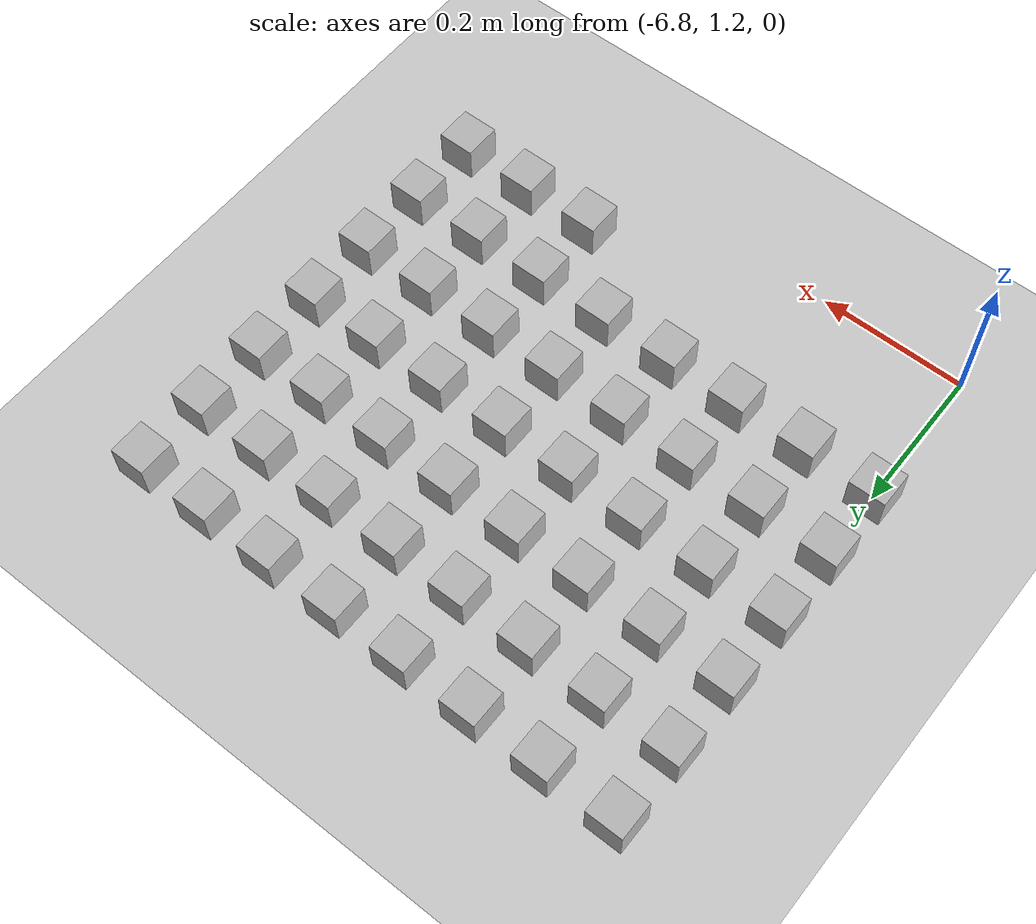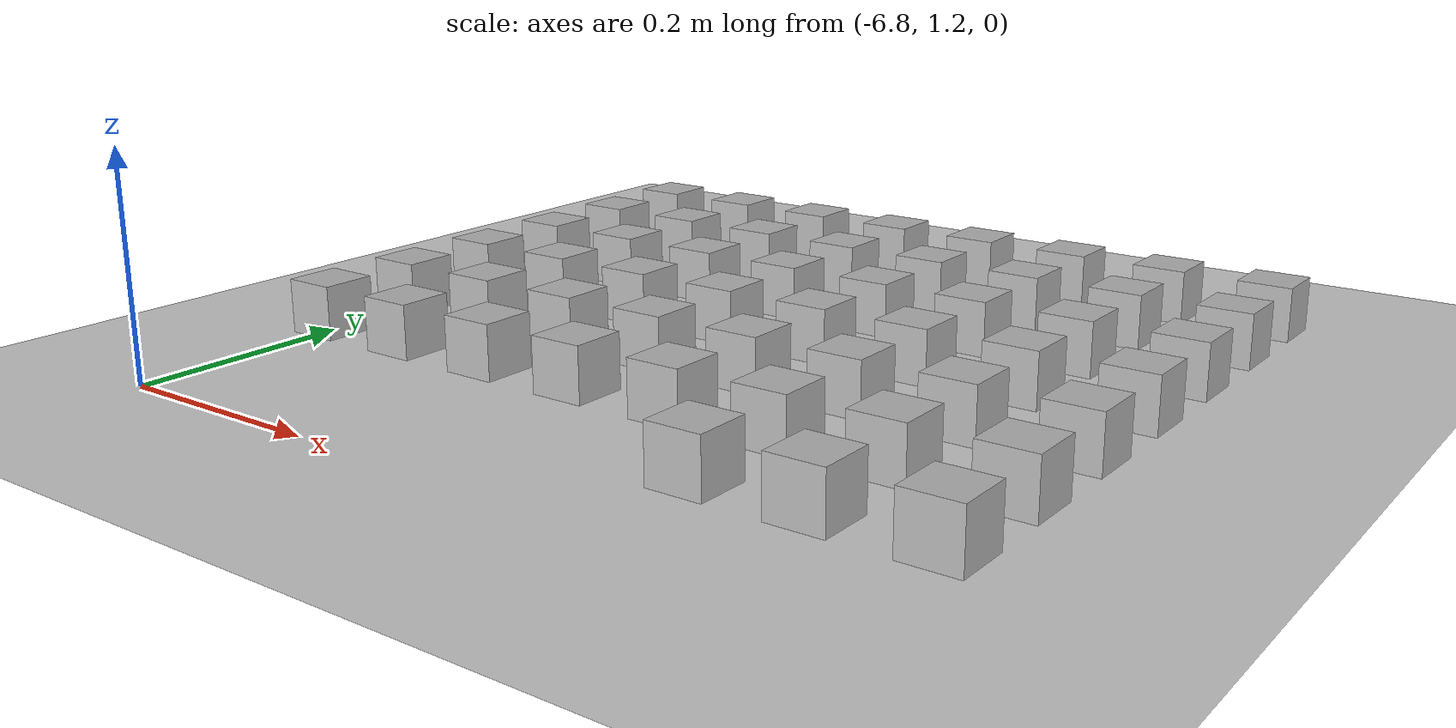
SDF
<sdf version="1.6">
 <world name="default">
  <model name="ground_plane">
   <static>1</static>
   <link name="link">
    <collision name="collision">
     <geometry><plane><normal>0 0 1</normal><size>100 100</size></plane></geometry>
     <surface><friction><ode><mu>100</mu><mu2>50</mu2></ode></friction></surface>
    </collision>
    <visual name="visual">
     <cast_shadows>0</cast_shadows>
     <geometry><plane><normal>0 0 1</normal><size>100 100</size></plane></geometry>
     <material>
      <script><uri>file://media/materials/scripts/gazebo.material</uri><name>Gazebo/Grey</name></script>
     </material>
    </visual>
   </link>
  </model>
  <model name="at77">
   <static>0</static>
   <link name="link">
    <inertial>
     <mass>0.01</mass>
     <inertia><ixx>4e-05</ixx><ixy>0</ixy><ixz>0</ixz><iyy>4e-05</iyy><iyz>0</iyz><izz>4e-05</izz></inertia>
    </inertial>
    <visual name="visual">
     <geometry><box><size>0.05 0.05 0.05</size></box></geometry>
     <material>
      <script>
       <uri>model://at0/materials/scripts</uri>
       <uri>model://at0/materials/textures</uri>
       <name>at0/Diffuse</name>
      </script>
     </material>
    </visual>
    <collision name="collision">
     <geometry><box><size>0.05 0.05 0.05</size></box></geometry>
     <surface><friction><ode><mu>0.8</mu><mu2>0.7</mu2></ode></friction></surface>
    </collision>
   </link>
   <pose>-6.3 1.3 0.025 0 -0 0</pose>
  </model>
  <model name="at78">
   <static>0</static>
   <link name="link">
    <inertial>
     <mass>0.01</mass>
     <inertia><ixx>4e-05</ixx><ixy>0</ixy><ixz>0</ixz><iyy>4e-05</iyy><iyz>0</iyz><izz>4e-05</izz></inertia>
    </inertial>
    <visual name="visual">
     <geometry><box><size>0.05 0.05 0.05</size></box></geometry>
     <material>
      <script>
       <uri>model://at0/materials/scripts</uri>
       <uri>model://at0/materials/textures</uri>
       <name>at0/Diffuse</name>
      </script>
     </material>
    </visual>
    <collision name="collision">
     <geometry><box><size>0.05 0.05 0.05</size></box></geometry>
     <surface><friction><ode><mu>0.8</mu><mu2>0.7</mu2></ode></friction></surface>
    </collision>
   </link>
   <pose>-6.2 1.3 0.025 0 -0 0</pose>
  </model>
  <model name="at79">
   <static>0</static>
   <link name="link">
    <inertial>
     <mass>0.01</mass>
     <inertia><ixx>4e-05</ixx><ixy>0</ixy><ixz>0</ixz><iyy>4e-05</iyy><iyz>0</iyz><izz>4e-05</izz></inertia>
    </inertial>
    <visual name="visual">
     <geometry><box><size>0.05 0.05 0.05</size></box></geometry>
     <material>
      <script>
       <uri>model://at0/materials/scripts</uri>
       <uri>model://at0/materials/textures</uri>
       <name>at0/Diffuse</name>
      </script>
     </material>
    </visual>
    <collision name="collision">
     <geometry><box><size>0.05 0.05 0.05</size></box></geometry>
     <surface><friction><ode><mu>0.8</mu><mu2>0.7</mu2></ode></friction></surface>
    </collision>
   </link>
   <pose>-6.1 1.3 0.025 0 -0 0</pose>
  </model>
  <model name="at80">
   <static>0</static>
   <link name="link">
    <inertial>
     <mass>0.01</mass>
     <inertia><ixx>4e-05</ixx><ixy>0</ixy><ixz>0</ixz><iyy>4e-05</iyy><iyz>0</iyz><izz>4e-05</izz></inertia>
    </inertial>
    <visual name="visual">
     <geometry><box><size>0.05 0.05 0.05</size></box></geometry>
     <material>
      <script>
       <uri>model://at0/materials/scripts</uri>
       <uri>model://at0/materials/textures</uri>
       <name>at0/Diffuse</name>
      </script>
     </material>
    </visual>
    <collision name="collision">
     <geometry><box><size>0.05 0.05 0.05</size></box></geometry>
     <surface><friction><ode><mu>0.8</mu><mu2>0.7</mu2></ode></friction></surface>
    </collision>
   </link>
   <pose>-6.8 1.4 0.025 0 -0 0</pose>
  </model>
  <model name="at81">
   <static>0</static>
   <link name="link">
    <inertial>
     <mass>0.01</mass>
     <inertia><ixx>4e-05</ixx><ixy>0</ixy><ixz>0</ixz><iyy>4e-05</iyy><iyz>0</iyz><izz>4e-05</izz></inertia>
    </inertial>
    <visual name="visual">
     <geometry><box><size>0.05 0.05 0.05</size></box></geometry>
     <material>
      <script>
       <uri>model://at0/materials/scripts</uri>
       <uri>model://at0/materials/textures</uri>
       <name>at0/Diffuse</name>
      </script>
     </material>
    </visual>
    <collision name="collision">
     <geometry><box><size>0.05 0.05 0.05</size></box></geometry>
     <surface><friction><ode><mu>0.8</mu><mu2>0.7</mu2></ode></friction></surface>
    </collision>
   </link>
   <pose>-6.7 1.4 0.025 0 -0 0</pose>
  </model>
  <model name="at82">
   <static>0</static>
   <link name="link">
    <inertial>
     <mass>0.01</mass>
     <inertia><ixx>4e-05</ixx><ixy>0</ixy><ixz>0</ixz><iyy>4e-05</iyy><iyz>0</iyz><izz>4e-05</izz></inertia>
    </inertial>
    <visual name="visual">
     <geometry><box><size>0.05 0.05 0.05</size></box></geometry>
     <material>
      <script>
       <uri>model://at0/materials/scripts</uri>
       <uri>model://at0/materials/textures</uri>
       <name>at0/Diffuse</name>
      </script>
     </material>
    </visual>
    <collision name="collision">
     <geometry><box><size>0.05 0.05 0.05</size></box></geometry>
     <surface><friction><ode><mu>0.8</mu><mu2>0.7</mu2></ode></friction></surface>
    </collision>
   </link>
   <pose>-6.6 1.4 0.025 0 -0 0</pose>
  </model>
  <model name="at83">
   <static>0</static>
   <link name="link">
    <inertial>
     <mass>0.01</mass>
     <inertia><ixx>4e-05</ixx><ixy>0</ixy><ixz>0</ixz><iyy>4e-05</iyy><iyz>0</iyz><izz>4e-05</izz></inertia>
    </inertial>
    <visual name="visual">
     <geometry><box><size>0.05 0.05 0.05</size></box></geometry>
     <material>
      <script>
       <uri>model://at0/materials/scripts</uri>
       <uri>model://at0/materials/textures</uri>
       <name>at0/Diffuse</name>
      </script>
     </material>
    </visual>
    <collision name="collision">
     <geometry><box><size>0.05 0.05 0.05</size></box></geometry>
     <surface><friction><ode><mu>0.8</mu><mu2>0.7</mu2></ode></friction></surface>
    </collision>
   </link>
   <pose>-6.5 1.4 0.025 0 -0 0</pose>
  </model>
  <model name="at84">
   <static>0</static>
   <link name="link">
    <inertial>
     <mass>0.01</mass>
     <inertia><ixx>4e-05</ixx><ixy>0</ixy><ixz>0</ixz><iyy>4e-05</iyy><iyz>0</iyz><izz>4e-05</izz></inertia>
    </inertial>
    <visual name="visual">
     <geometry><box><size>0.05 0.05 0.05</size></box></geometry>
     <material>
      <script>
       <uri>model://at0/materials/scripts</uri>
       <uri>model://at0/materials/textures</uri>
       <name>at0/Diffuse</name>
      </script>
     </material>
    </visual>
    <collision name="collision">
     <geometry><box><size>0.05 0.05 0.05</size></box></geometry>
     <surface><friction><ode><mu>0.8</mu><mu2>0.7</mu2></ode></friction></surface>
    </collision>
   </link>
   <pose>-6.4 1.4 0.025 0 -0 0</pose>
  </model>
  <model name="at85">
   <static>0</static>
   <link name="link">
    <inertial>
     <mass>0.01</mass>
     <inertia><ixx>4e-05</ixx><ixy>0</ixy><ixz>0</ixz><iyy>4e-05</iyy><iyz>0</iyz><izz>4e-05</izz></inertia>
    </inertial>
    <visual name="visual">
     <geometry><box><size>0.05 0.05 0.05</size></box></geometry>
     <material>
      <script>
       <uri>model://at0/materials/scripts</uri>
       <uri>model://at0/materials/textures</uri>
       <name>at0/Diffuse</name>
      </script>
     </material>
    </visual>
    <collision name="collision">
     <geometry><box><size>0.05 0.05 0.05</size></box></geometry>
     <surface><friction><ode><mu>0.8</mu><mu2>0.7</mu2></ode></friction></surface>
    </collision>
   </link>
   <pose>-6.3 1.4 0.025 0 -0 0</pose>
  </model>
  <model name="at86">
   <static>0</static>
   <link name="link">
    <inertial>
     <mass>0.01</mass>
     <inertia><ixx>4e-05</ixx><ixy>0</ixy><ixz>0</ixz><iyy>4e-05</iyy><iyz>0</iyz><izz>4e-05</izz></inertia>
    </inertial>
    <visual name="visual">
     <geometry><box><size>0.05 0.05 0.05</size></box></geometry>
     <material>
      <script>
       <uri>model://at0/materials/scripts</uri>
       <uri>model://at0/materials/textures</uri>
       <name>at0/Diffuse</name>
      </script>
     </material>
    </visual>
    <collision name="collision">
     <geometry><box><size>0.05 0.05 0.05</size></box></geometry>
     <surface><friction><ode><mu>0.8</mu><mu2>0.7</mu2></ode></friction></surface>
    </collision>
   </link>
   <pose>-6.2 1.4 0.025 0 -0 0</pose>
  </model>
  <model name="at87">
   <static>0</static>
   <link name="link">
    <inertial>
     <mass>0.01</mass>
     <inertia><ixx>4e-05</ixx><ixy>0</ixy><ixz>0</ixz><iyy>4e-05</iyy><iyz>0</iyz><izz>4e-05</izz></inertia>
    </inertial>
    <visual name="visual">
     <geometry><box><size>0.05 0.05 0.05</size></box></geometry>
     <material>
      <script>
       <uri>model://at0/materials/scripts</uri>
       <uri>model://at0/materials/textures</uri>
       <name>at0/Diffuse</name>
      </script>
     </material>
    </visual>
    <collision name="collision">
     <geometry><box><size>0.05 0.05 0.05</size></box></geometry>
     <surface><friction><ode><mu>0.8</mu><mu2>0.7</mu2></ode></friction></surface>
    </collision>
   </link>
   <pose>-6.1 1.4 0.025 0 -0 0</pose>
  </model>
  <model name="at88">
   <static>0</static>
   <link name="link">
    <inertial>
     <mass>0.01</mass>
     <inertia><ixx>4e-05</ixx><ixy>0</ixy><ixz>0</ixz><iyy>4e-05</iyy><iyz>0</iyz><izz>4e-05</izz></inertia>
    </inertial>
    <visual name="visual">
     <geometry><box><size>0.05 0.05 0.05</size></box></geometry>
     <material>
      <script>
       <uri>model://at0/materials/scripts</uri>
       <uri>model://at0/materials/textures</uri>
       <name>at0/Diffuse</name>
      </script>
     </material>
    </visual>
    <collision name="collision">
     <geometry><box><size>0.05 0.05 0.05</size></box></geometry>
     <surface><friction><ode><mu>0.8</mu><mu2>0.7</mu2></ode></friction></surface>
    </collision>
   </link>
   <pose>-6.8 1.5 0.025 0 -0 0</pose>
  </model>
  <model name="at89">
   <static>0</static>
   <link name="link">
    <inertial>
     <mass>0.01</mass>
     <inertia><ixx>4e-05</ixx><ixy>0</ixy><ixz>0</ixz><iyy>4e-05</iyy><iyz>0</iyz><izz>4e-05</izz></inertia>
    </inertial>
    <visual name="visual">
     <geometry><box><size>0.05 0.05 0.05</size></box></geometry>
     <material>
      <script>
       <uri>model://at0/materials/scripts</uri>
       <uri>model://at0/materials/textures</uri>
       <name>at0/Diffuse</name>
      </script>
     </material>
    </visual>
    <collision name="collision">
     <geometry><box><size>0.05 0.05 0.05</size></box></geometry>
     <surface><friction><ode><mu>0.8</mu><mu2>0.7</mu2></ode></friction></surface>
    </collision>
   </link>
   <pose>-6.7 1.5 0.025 0 -0 0</pose>
  </model>
  <model name="at90">
   <static>0</static>
   <link name="link">
    <inertial>
     <mass>0.01</mass>
     <inertia><ixx>4e-05</ixx><ixy>0</ixy><ixz>0</ixz><iyy>4e-05</iyy><iyz>0</iyz><izz>4e-05</izz></inertia>
    </inertial>
    <visual name="visual">
     <geometry><box><size>0.05 0.05 0.05</size></box></geometry>
     <material>
      <script>
       <uri>model://at0/materials/scripts</uri>
       <uri>model://at0/materials/textures</uri>
       <name>at0/Diffuse</name>
      </script>
     </material>
    </visual>
    <collision name="collision">
     <geometry><box><size>0.05 0.05 0.05</size></box></geometry>
     <surface><friction><ode><mu>0.8</mu><mu2>0.7</mu2></ode></friction></surface>
    </collision>
   </link>
   <pose>-6.6 1.5 0.025 0 -0 0</pose>
  </model>
  <model name="at91">
   <static>0</static>
   <link name="link">
    <inertial>
     <mass>0.01</mass>
     <inertia><ixx>4e-05</ixx><ixy>0</ixy><ixz>0</ixz><iyy>4e-05</iyy><iyz>0</iyz><izz>4e-05</izz></inertia>
    </inertial>
    <visual name="visual">
     <geometry><box><size>0.05 0.05 0.05</size></box></geometry>
     <material>
      <script>
       <uri>model://at0/materials/scripts</uri>
       <uri>model://at0/materials/textures</uri>
       <name>at0/Diffuse</name>
      </script>
     </material>
    </visual>
    <collision name="collision">
     <geometry><box><size>0.05 0.05 0.05</size></box></geometry>
     <surface><friction><ode><mu>0.8</mu><mu2>0.7</mu2></ode></friction></surface>
    </collision>
   </link>
   <pose>-6.5 1.5 0.025 0 -0 0</pose>
  </model>
  <model name="at92">
   <static>0</static>
   <link name="link">
    <inertial>
     <mass>0.01</mass>
     <inertia><ixx>4e-05</ixx><ixy>0</ixy><ixz>0</ixz><iyy>4e-05</iyy><iyz>0</iyz><izz>4e-05</izz></inertia>
    </inertial>
    <visual name="visual">
     <geometry><box><size>0.05 0.05 0.05</size></box></geometry>
     <material>
      <script>
       <uri>model://at0/materials/scripts</uri>
       <uri>model://at0/materials/textures</uri>
       <name>at0/Diffuse</name>
      </script>
     </material>
    </visual>
    <collision name="collision">
     <geometry><box><size>0.05 0.05 0.05</size></box></geometry>
     <surface><friction><ode><mu>0.8</mu><mu2>0.7</mu2></ode></friction></surface>
    </collision>
   </link>
   <pose>-6.4 1.5 0.025 0 -0 0</pose>
  </model>
  <model name="at93">
   <static>0</static>
   <link name="link">
    <inertial>
     <mass>0.01</mass>
     <inertia><ixx>4e-05</ixx><ixy>0</ixy><ixz>0</ixz><iyy>4e-05</iyy><iyz>0</iyz><izz>4e-05</izz></inertia>
    </inertial>
    <visual name="visual">
     <geometry><box><size>0.05 0.05 0.05</size></box></geometry>
     <material>
      <script>
       <uri>model://at0/materials/scripts</uri>
       <uri>model://at0/materials/textures</uri>
       <name>at0/Diffuse</name>
      </script>
     </material>
    </visual>
    <collision name="collision">
     <geometry><box><size>0.05 0.05 0.05</size></box></geometry>
     <surface><friction><ode><mu>0.8</mu><mu2>0.7</mu2></ode></friction></surface>
    </collision>
   </link>
   <pose>-6.3 1.5 0.025 0 -0 0</pose>
  </model>
  <model name="at94">
   <static>0</static>
   <link name="link">
    <inertial>
     <mass>0.01</mass>
     <inertia><ixx>4e-05</ixx><ixy>0</ixy><ixz>0</ixz><iyy>4e-05</iyy><iyz>0</iyz><izz>4e-05</izz></inertia>
    </inertial>
    <visual name="visual">
     <geometry><box><size>0.05 0.05 0.05</size></box></geometry>
     <material>
      <script>
       <uri>model://at0/materials/scripts</uri>
       <uri>model://at0/materials/textures</uri>
       <name>at0/Diffuse</name>
      </script>
     </material>
    </visual>
    <collision name="collision">
     <geometry><box><size>0.05 0.05 0.05</size></box></geometry>
     <surface><friction><ode><mu>0.8</mu><mu2>0.7</mu2></ode></friction></surface>
    </collision>
   </link>
   <pose>-6.2 1.5 0.025 0 -0 0</pose>
  </model>
  <model name="at95">
   <static>0</static>
   <link name="link">
    <inertial>
     <mass>0.01</mass>
     <inertia><ixx>4e-05</ixx><ixy>0</ixy><ixz>0</ixz><iyy>4e-05</iyy><iyz>0</iyz><izz>4e-05</izz></inertia>
    </inertial>
    <visual name="visual">
     <geometry><box><size>0.05 0.05 0.05</size></box></geometry>
     <material>
      <script>
       <uri>model://at0/materials/scripts</uri>
       <uri>model://at0/materials/textures</uri>
       <name>at0/Diffuse</name>
      </script>
     </material>
    </visual>
    <collision name="collision">
     <geometry><box><size>0.05 0.05 0.05</size></box></geometry>
     <surface><friction><ode><mu>0.8</mu><mu2>0.7</mu2></ode></friction></surface>
    </collision>
   </link>
   <pose>-6.1 1.5 0.025 0 -0 0</pose>
  </model>
  <model name="at96">
   <static>0</static>
   <link name="link">
    <inertial>
     <mass>0.01</mass>
     <inertia><ixx>4e-05</ixx><ixy>0</ixy><ixz>0</ixz><iyy>4e-05</iyy><iyz>0</iyz><izz>4e-05</izz></inertia>
    </inertial>
    <visual name="visual">
     <geometry><box><size>0.05 0.05 0.05</size></box></geometry>
     <material>
      <script>
       <uri>model://at0/materials/scripts</uri>
       <uri>model://at0/materials/textures</uri>
       <name>at0/Diffuse</name>
      </script>
     </material>
    </visual>
    <collision name="collision">
     <geometry><box><size>0.05 0.05 0.05</size></box></geometry>
     <surface><friction><ode><mu>0.8</mu><mu2>0.7</mu2></ode></friction></surface>
    </collision>
   </link>
   <pose>-6.8 1.6 0.025 0 -0 0</pose>
  </model>
  <model name="at97">
   <static>0</static>
   <link name="link">
    <inertial>
     <mass>0.01</mass>
     <inertia><ixx>4e-05</ixx><ixy>0</ixy><ixz>0</ixz><iyy>4e-05</iyy><iyz>0</iyz><izz>4e-05</izz></inertia>
    </inertial>
    <visual name="visual">
     <geometry><box><size>0.05 0.05 0.05</size></box></geometry>
     <material>
      <script>
       <uri>model://at0/materials/scripts</uri>
       <uri>model://at0/materials/textures</uri>
       <name>at0/Diffuse</name>
      </script>
     </material>
    </visual>
    <collision name="collision">
     <geometry><box><size>0.05 0.05 0.05</size></box></geometry>
     <surface><friction><ode><mu>0.8</mu><mu2>0.7</mu2></ode></friction></surface>
    </collision>
   </link>
   <pose>-6.7 1.6 0.025 0 -0 0</pose>
  </model>
  <model name="at98">
   <static>0</static>
   <link name="link">
    <inertial>
     <mass>0.01</mass>
     <inertia><ixx>4e-05</ixx><ixy>0</ixy><ixz>0</ixz><iyy>4e-05</iyy><iyz>0</iyz><izz>4e-05</izz></inertia>
    </inertial>
    <visual name="visual">
     <geometry><box><size>0.05 0.05 0.05</size></box></geometry>
     <material>
      <script>
       <uri>model://at0/materials/scripts</uri>
       <uri>model://at0/materials/textures</uri>
       <name>at0/Diffuse</name>
      </script>
     </material>
    </visual>
    <collision name="collision">
     <geometry><box><size>0.05 0.05 0.05</size></box></geometry>
     <surface><friction><ode><mu>0.8</mu><mu2>0.7</mu2></ode></friction></surface>
    </collision>
   </link>
   <pose>-6.6 1.6 0.025 0 -0 0</pose>
  </model>
  <model name="at99">
   <static>0</static>
   <link name="link">
    <inertial>
     <mass>0.01</mass>
     <inertia><ixx>4e-05</ixx><ixy>0</ixy><ixz>0</ixz><iyy>4e-05</iyy><iyz>0</iyz><izz>4e-05</izz></inertia>
    </inertial>
    <visual name="visual">
     <geometry><box><size>0.05 0.05 0.05</size></box></geometry>
     <material>
      <script>
       <uri>model://at0/materials/scripts</uri>
       <uri>model://at0/materials/textures</uri>
       <name>at0/Diffuse</name>
      </script>
     </material>
    </visual>
    <collision name="collision">
     <geometry><box><size>0.05 0.05 0.05</size></box></geometry>
     <surface><friction><ode><mu>0.8</mu><mu2>0.7</mu2></ode></friction></surface>
    </collision>
   </link>
   <pose>-6.5 1.6 0.025 0 -0 0</pose>
  </model>
  <model name="at100">
   <static>0</static>
   <link name="link">
    <inertial>
     <mass>0.01</mass>
     <inertia><ixx>4e-05</ixx><ixy>0</ixy><ixz>0</ixz><iyy>4e-05</iyy><iyz>0</iyz><izz>4e-05</izz></inertia>
    </inertial>
    <visual name="visual">
     <geometry><box><size>0.05 0.05 0.05</size></box></geometry>
     <material>
      <script>
       <uri>model://at0/materials/scripts</uri>
       <uri>model://at0/materials/textures</uri>
       <name>at0/Diffuse</name>
      </script>
     </material>
    </visual>
    <collision name="collision">
     <geometry><box><size>0.05 0.05 0.05</size></box></geometry>
     <surface><friction><ode><mu>0.8</mu><mu2>0.7</mu2></ode></friction></surface>
    </collision>
   </link>
   <pose>-6.4 1.6 0.025 0 -0 0</pose>
  </model>
  <model name="at101">
   <static>0</static>
   <link name="link">
    <inertial>
     <mass>0.01</mass>
     <inertia><ixx>4e-05</ixx><ixy>0</ixy><ixz>0</ixz><iyy>4e-05</iyy><iyz>0</iyz><izz>4e-05</izz></inertia>
    </inertial>
    <visual name="visual">
     <geometry><box><size>0.05 0.05 0.05</size></box></geometry>
     <material>
      <script>
       <uri>model://at0/materials/scripts</uri>
       <uri>model://at0/materials/textures</uri>
       <name>at0/Diffuse</name>
      </script>
     </material>
    </visual>
    <collision name="collision">
     <geometry><box><size>0.05 0.05 0.05</size></box></geometry>
     <surface><friction><ode><mu>0.8</mu><mu2>0.7</mu2></ode></friction></surface>
    </collision>
   </link>
   <pose>-6.3 1.6 0.025 0 -0 0</pose>
  </model>
  <model name="at102">
   <static>0</static>
   <link name="link">
    <inertial>
     <mass>0.01</mass>
     <inertia><ixx>4e-05</ixx><ixy>0</ixy><ixz>0</ixz><iyy>4e-05</iyy><iyz>0</iyz><izz>4e-05</izz></inertia>
    </inertial>
    <visual name="visual">
     <geometry><box><size>0.05 0.05 0.05</size></box></geometry>
     <material>
      <script>
       <uri>model://at0/materials/scripts</uri>
       <uri>model://at0/materials/textures</uri>
       <name>at0/Diffuse</name>
      </script>
     </material>
    </visual>
    <collision name="collision">
     <geometry><box><size>0.05 0.05 0.05</size></box></geometry>
     <surface><friction><ode><mu>0.8</mu><mu2>0.7</mu2></ode></friction></surface>
    </collision>
   </link>
   <pose>-6.2 1.6 0.025 0 -0 0</pose>
  </model>
  <model name="at103">
   <static>0</static>
   <link name="link">
    <inertial>
     <mass>0.01</mass>
     <inertia><ixx>4e-05</ixx><ixy>0</ixy><ixz>0</ixz><iyy>4e-05</iyy><iyz>0</iyz><izz>4e-05</izz></inertia>
    </inertial>
    <visual name="visual">
     <geometry><box><size>0.05 0.05 0.05</size></box></geometry>
     <material>
      <script>
       <uri>model://at0/materials/scripts</uri>
       <uri>model://at0/materials/textures</uri>
       <name>at0/Diffuse</name>
      </script>
     </material>
    </visual>
    <collision name="collision">
     <geometry><box><size>0.05 0.05 0.05</size></box></geometry>
     <surface><friction><ode><mu>0.8</mu><mu2>0.7</mu2></ode></friction></surface>
    </collision>
   </link>
   <pose>-6.1 1.6 0.025 0 -0 0</pose>
  </model>
  <model name="at104">
   <static>0</static>
   <link name="link">
    <inertial>
     <mass>0.01</mass>
     <inertia><ixx>4e-05</ixx><ixy>0</ixy><ixz>0</ixz><iyy>4e-05</iyy><iyz>0</iyz><izz>4e-05</izz></inertia>
    </inertial>
    <visual name="visual">
     <geometry><box><size>0.05 0.05 0.05</size></box></geometry>
     <material>
      <script>
       <uri>model://at0/materials/scripts</uri>
       <uri>model://at0/materials/textures</uri>
       <name>at0/Diffuse</name>
      </script>
     </material>
    </visual>
    <collision name="collision">
     <geometry><box><size>0.05 0.05 0.05</size></box></geometry>
     <surface><friction><ode><mu>0.8</mu><mu2>0.7</mu2></ode></friction></surface>
    </collision>
   </link>
   <pose>-6.8 1.7 0.025 0 -0 0</pose>
  </model>
  <model name="at105">
   <static>0</static>
   <link name="link">
    <inertial>
     <mass>0.01</mass>
     <inertia><ixx>4e-05</ixx><ixy>0</ixy><ixz>0</ixz><iyy>4e-05</iyy><iyz>0</iyz><izz>4e-05</izz></inertia>
    </inertial>
    <visual name="visual">
     <geometry><box><size>0.05 0.05 0.05</size></box></geometry>
     <material>
      <script>
       <uri>model://at0/materials/scripts</uri>
       <uri>model://at0/materials/textures</uri>
       <name>at0/Diffuse</name>
      </script>
     </material>
    </visual>
    <collision name="collision">
     <geometry><box><size>0.05 0.05 0.05</size></box></geometry>
     <surface><friction><ode><mu>0.8</mu><mu2>0.7</mu2></ode></friction></surface>
    </collision>
   </link>
   <pose>-6.7 1.7 0.025 0 -0 0</pose>
  </model>
  <model name="at106">
   <static>0</static>
   <link name="link">
    <inertial>
     <mass>0.01</mass>
     <inertia><ixx>4e-05</ixx><ixy>0</ixy><ixz>0</ixz><iyy>4e-05</iyy><iyz>0</iyz><izz>4e-05</izz></inertia>
    </inertial>
    <visual name="visual">
     <geometry><box><size>0.05 0.05 0.05</size></box></geometry>
     <material>
      <script>
       <uri>model://at0/materials/scripts</uri>
       <uri>model://at0/materials/textures</uri>
       <name>at0/Diffuse</name>
      </script>
     </material>
    </visual>
    <collision name="collision">
     <geometry><box><size>0.05 0.05 0.05</size></box></geometry>
     <surface><friction><ode><mu>0.8</mu><mu2>0.7</mu2></ode></friction></surface>
    </collision>
   </link>
   <pose>-6.6 1.7 0.025 0 -0 0</pose>
  </model>
  <model name="at107">
   <static>0</static>
   <link name="link">
    <inertial>
     <mass>0.01</mass>
     <inertia><ixx>4e-05</ixx><ixy>0</ixy><ixz>0</ixz><iyy>4e-05</iyy><iyz>0</iyz><izz>4e-05</izz></inertia>
    </inertial>
    <visual name="visual">
     <geometry><box><size>0.05 0.05 0.05</size></box></geometry>
     <material>
      <script>
       <uri>model://at0/materials/scripts</uri>
       <uri>model://at0/materials/textures</uri>
       <name>at0/Diffuse</name>
      </script>
     </material>
    </visual>
    <collision name="collision">
     <geometry><box><size>0.05 0.05 0.05</size></box></geometry>
     <surface><friction><ode><mu>0.8</mu><mu2>0.7</mu2></ode></friction></surface>
    </collision>
   </link>
   <pose>-6.5 1.7 0.025 0 -0 0</pose>
  </model>
  <model name="at108">
   <static>0</static>
   <link name="link">
    <inertial>
     <mass>0.01</mass>
     <inertia><ixx>4e-05</ixx><ixy>0</ixy><ixz>0</ixz><iyy>4e-05</iyy><iyz>0</iyz><izz>4e-05</izz></inertia>
    </inertial>
    <visual name="visual">
     <geometry><box><size>0.05 0.05 0.05</size></box></geometry>
     <material>
      <script>
       <uri>model://at0/materials/scripts</uri>
       <uri>model://at0/materials/textures</uri>
       <name>at0/Diffuse</name>
      </script>
     </material>
    </visual>
    <collision name="collision">
     <geometry><box><size>0.05 0.05 0.05</size></box></geometry>
     <surface><friction><ode><mu>0.8</mu><mu2>0.7</mu2></ode></friction></surface>
    </collision>
   </link>
   <pose>-6.4 1.7 0.025 0 -0 0</pose>
  </model>
  <model name="at109">
   <static>0</static>
   <link name="link">
    <inertial>
     <mass>0.01</mass>
     <inertia><ixx>4e-05</ixx><ixy>0</ixy><ixz>0</ixz><iyy>4e-05</iyy><iyz>0</iyz><izz>4e-05</izz></inertia>
    </inertial>
    <visual name="visual">
     <geometry><box><size>0.05 0.05 0.05</size></box></geometry>
     <material>
      <script>
       <uri>model://at0/materials/scripts</uri>
       <uri>model://at0/materials/textures</uri>
       <name>at0/Diffuse</name>
      </script>
     </material>
    </visual>
    <collision name="collision">
     <geometry><box><size>0.05 0.05 0.05</size></box></geometry>
     <surface><friction><ode><mu>0.8</mu><mu2>0.7</mu2></ode></friction></surface>
    </collision>
   </link>
   <pose>-6.3 1.7 0.025 0 -0 0</pose>
  </model>
  <model name="at110">
   <static>0</static>
   <link name="link">
    <inertial>
     <mass>0.01</mass>
     <inertia><ixx>4e-05</ixx><ixy>0</ixy><ixz>0</ixz><iyy>4e-05</iyy><iyz>0</iyz><izz>4e-05</izz></inertia>
    </inertial>
    <visual name="visual">
     <geometry><box><size>0.05 0.05 0.05</size></box></geometry>
     <material>
      <script>
       <uri>model://at0/materials/scripts</uri>
       <uri>model://at0/materials/textures</uri>
       <name>at0/Diffuse</name>
      </script>
     </material>
    </visual>
    <collision name="collision">
     <geometry><box><size>0.05 0.05 0.05</size></box></geometry>
     <surface><friction><ode><mu>0.8</mu><mu2>0.7</mu2></ode></friction></surface>
    </collision>
   </link>
   <pose>-6.2 1.7 0.025 0 -0 0</pose>
  </model>
  <model name="at111">
   <static>0</static>
   <link name="link">
    <inertial>
     <mass>0.01</mass>
     <inertia><ixx>4e-05</ixx><ixy>0</ixy><ixz>0</ixz><iyy>4e-05</iyy><iyz>0</iyz><izz>4e-05</izz></inertia>
    </inertial>
    <visual name="visual">
     <geometry><box><size>0.05 0.05 0.05</size></box></geometry>
     <material>
      <script>
       <uri>model://at0/materials/scripts</uri>
       <uri>model://at0/materials/textures</uri>
       <name>at0/Diffuse</name>
      </script>
     </material>
    </visual>
    <collision name="collision">
     <geometry><box><size>0.05 0.05 0.05</size></box></geometry>
     <surface><friction><ode><mu>0.8</mu><mu2>0.7</mu2></ode></friction></surface>
    </collision>
   </link>
   <pose>-6.1 1.7 0.025 0 -0 0</pose>
  </model>
  <model name="at112">
   <static>0</static>
   <link name="link">
    <inertial>
     <mass>0.01</mass>
     <inertia><ixx>4e-05</ixx><ixy>0</ixy><ixz>0</ixz><iyy>4e-05</iyy><iyz>0</iyz><izz>4e-05</izz></inertia>
    </inertial>
    <visual name="visual">
     <geometry><box><size>0.05 0.05 0.05</size></box></geometry>
     <material>
      <script>
       <uri>model://at0/materials/scripts</uri>
       <uri>model://at0/materials/textures</uri>
       <name>at0/Diffuse</name>
      </script>
     </material>
    </visual>
    <collision name="collision">
     <geometry><box><size>0.05 0.05 0.05</size></box></geometry>
     <surface><friction><ode><mu>0.8</mu><mu2>0.7</mu2></ode></friction></surface>
    </collision>
   </link>
   <pose>-6.8 1.8 0.025 0 -0 0</pose>
  </model>
  <model name="at113">
   <static>0</static>
   <link name="link">
    <inertial>
     <mass>0.01</mass>
     <inertia><ixx>4e-05</ixx><ixy>0</ixy><ixz>0</ixz><iyy>4e-05</iyy><iyz>0</iyz><izz>4e-05</izz></inertia>
    </inertial>
    <visual name="visual">
     <geometry><box><size>0.05 0.05 0.05</size></box></geometry>
     <material>
      <script>
       <uri>model://at0/materials/scripts</uri>
       <uri>model://at0/materials/textures</uri>
       <name>at0/Diffuse</name>
      </script>
     </material>
    </visual>
    <collision name="collision">
     <geometry><box><size>0.05 0.05 0.05</size></box></geometry>
     <surface><friction><ode><mu>0.8</mu><mu2>0.7</mu2></ode></friction></surface>
    </collision>
   </link>
   <pose>-6.7 1.8 0.025 0 -0 0</pose>
  </model>
  <model name="at114">
   <static>0</static>
   <link name="link">
    <inertial>
     <mass>0.01</mass>
     <inertia><ixx>4e-05</ixx><ixy>0</ixy><ixz>0</ixz><iyy>4e-05</iyy><iyz>0</iyz><izz>4e-05</izz></inertia>
    </inertial>
    <visual name="visual">
     <geometry><box><size>0.05 0.05 0.05</size></box></geometry>
     <material>
      <script>
       <uri>model://at0/materials/scripts</uri>
       <uri>model://at0/materials/textures</uri>
       <name>at0/Diffuse</name>
      </script>
     </material>
    </visual>
    <collision name="collision">
     <geometry><box><size>0.05 0.05 0.05</size></box></geometry>
     <surface><friction><ode><mu>0.8</mu><mu2>0.7</mu2></ode></friction></surface>
    </collision>
   </link>
   <pose>-6.6 1.8 0.025 0 -0 0</pose>
  </model>
  <model name="at115">
   <static>0</static>
   <link name="link">
    <inertial>
     <mass>0.01</mass>
     <inertia><ixx>4e-05</ixx><ixy>0</ixy><ixz>0</ixz><iyy>4e-05</iyy><iyz>0</iyz><izz>4e-05</izz></inertia>
    </inertial>
    <visual name="visual">
     <geometry><box><size>0.05 0.05 0.05</size></box></geometry>
     <material>
      <script>
       <uri>model://at0/materials/scripts</uri>
       <uri>model://at0/materials/textures</uri>
       <name>at0/Diffuse</name>
      </script>
     </material>
    </visual>
    <collision name="collision">
     <geometry><box><size>0.05 0.05 0.05</size></box></geometry>
     <surface><friction><ode><mu>0.8</mu><mu2>0.7</mu2></ode></friction></surface>
    </collision>
   </link>
   <pose>-6.5 1.8 0.025 0 -0 0</pose>
  </model>
  <model name="at116">
   <static>0</static>
   <link name="link">
    <inertial>
     <mass>0.01</mass>
     <inertia><ixx>4e-05</ixx><ixy>0</ixy><ixz>0</ixz><iyy>4e-05</iyy><iyz>0</iyz><izz>4e-05</izz></inertia>
    </inertial>
    <visual name="visual">
     <geometry><box><size>0.05 0.05 0.05</size></box></geometry>
     <material>
      <script>
       <uri>model://at0/materials/scripts</uri>
       <uri>model://at0/materials/textures</uri>
       <name>at0/Diffuse</name>
      </script>
     </material>
    </visual>
    <collision name="collision">
     <geometry><box><size>0.05 0.05 0.05</size></box></geometry>
     <surface><friction><ode><mu>0.8</mu><mu2>0.7</mu2></ode></friction></surface>
    </collision>
   </link>
   <pose>-6.4 1.8 0.025 0 -0 0</pose>
  </model>
  <model name="at117">
   <static>0</static>
   <link name="link">
    <inertial>
     <mass>0.01</mass>
     <inertia><ixx>4e-05</ixx><ixy>0</ixy><ixz>0</ixz><iyy>4e-05</iyy><iyz>0</iyz><izz>4e-05</izz></inertia>
    </inertial>
    <visual name="visual">
     <geometry><box><size>0.05 0.05 0.05</size></box></geometry>
     <material>
      <script>
       <uri>model://at0/materials/scripts</uri>
       <uri>model://at0/materials/textures</uri>
       <name>at0/Diffuse</name>
      </script>
     </material>
    </visual>
    <collision name="collision">
     <geometry><box><size>0.05 0.05 0.05</size></box></geometry>
     <surface><friction><ode><mu>0.8</mu><mu2>0.7</mu2></ode></friction></surface>
    </collision>
   </link>
   <pose>-6.3 1.8 0.025 0 -0 0</pose>
  </model>
  <model name="at118">
   <static>0</static>
   <link name="link">
    <inertial>
     <mass>0.01</mass>
     <inertia><ixx>4e-05</ixx><ixy>0</ixy><ixz>0</ixz><iyy>4e-05</iyy><iyz>0</iyz><izz>4e-05</izz></inertia>
    </inertial>
    <visual name="visual">
     <geometry><box><size>0.05 0.05 0.05</size></box></geometry>
     <material>
      <script>
       <uri>model://at0/materials/scripts</uri>
       <uri>model://at0/materials/textures</uri>
       <name>at0/Diffuse</name>
      </script>
     </material>
    </visual>
    <collision name="collision">
     <geometry><box><size>0.05 0.05 0.05</size></box></geometry>
     <surface><friction><ode><mu>0.8</mu><mu2>0.7</mu2></ode></friction></surface>
    </collision>
   </link>
   <pose>-6.2 1.8 0.025 0 -0 0</pose>
  </model>
  <model name="at119">
   <static>0</static>
   <link name="link">
    <inertial>
     <mass>0.01</mass>
     <inertia><ixx>4e-05</ixx><ixy>0</ixy><ixz>0</ixz><iyy>4e-05</iyy><iyz>0</iyz><izz>4e-05</izz></inertia>
    </inertial>
    <visual name="visual">
     <geometry><box><size>0.05 0.05 0.05</size></box></geometry>
     <material>
      <script>
       <uri>model://at0/materials/scripts</uri>
       <uri>model://at0/materials/textures</uri>
       <name>at0/Diffuse</name>
      </script>
     </material>
    </visual>
    <collision name="collision">
     <geometry><box><size>0.05 0.05 0.05</size></box></geometry>
     <surface><friction><ode><mu>0.8</mu><mu2>0.7</mu2></ode></friction></surface>
    </collision>
   </link>
   <pose>-6.1 1.8 0.025 0 -0 0</pose>
  </model>
  <model name="at120">
   <static>0</static>
   <link name="link">
    <inertial>
     <mass>0.01</mass>
     <inertia><ixx>4e-05</ixx><ixy>0</ixy><ixz>0</ixz><iyy>4e-05</iyy><iyz>0</iyz><izz>4e-05</izz></inertia>
    </inertial>
    <visual name="visual">
     <geometry><box><size>0.05 0.05 0.05</size></box></geometry>
     <material>
      <script>
       <uri>model://at0/materials/scripts</uri>
       <uri>model://at0/materials/textures</uri>
       <name>at0/Diffuse</name>
      </script>
     </material>
    </visual>
    <collision name="collision">
     <geometry><box><size>0.05 0.05 0.05</size></box></geometry>
     <surface><friction><ode><mu>0.8</mu><mu2>0.7</mu2></ode></friction></surface>
    </collision>
   </link>
   <pose>-6.8 1.9 0.025 0 -0 0</pose>
  </model>
  <model name="at121">
   <static>0</static>
   <link name="link">
    <inertial>
     <mass>0.01</mass>
     <inertia><ixx>4e-05</ixx><ixy>0</ixy><ixz>0</ixz><iyy>4e-05</iyy><iyz>0</iyz><izz>4e-05</izz></inertia>
    </inertial>
    <visual name="visual">
     <geometry><box><size>0.05 0.05 0.05</size></box></geometry>
     <material>
      <script>
       <uri>model://at0/materials/scripts</uri>
       <uri>model://at0/materials/textures</uri>
       <name>at0/Diffuse</name>
      </script>
     </material>
    </visual>
    <collision name="collision">
     <geometry><box><size>0.05 0.05 0.05</size></box></geometry>
     <surface><friction><ode><mu>0.8</mu><mu2>0.7</mu2></ode></friction></surface>
    </collision>
   </link>
   <pose>-6.7 1.9 0.025 0 -0 0</pose>
  </model>
  <model name="at122">
   <static>0</static>
   <link name="link">
    <inertial>
     <mass>0.01</mass>
     <inertia><ixx>4e-05</ixx><ixy>0</ixy><ixz>0</ixz><iyy>4e-05</iyy><iyz>0</iyz><izz>4e-05</izz></inertia>
    </inertial>
    <visual name="visual">
     <geometry><box><size>0.05 0.05 0.05</size></box></geometry>
     <material>
      <script>
       <uri>model://at0/materials/scripts</uri>
       <uri>model://at0/materials/textures</uri>
       <name>at0/Diffuse</name>
      </script>
     </material>
    </visual>
    <collision name="collision">
     <geometry><box><size>0.05 0.05 0.05</size></box></geometry>
     <surface><friction><ode><mu>0.8</mu><mu2>0.7</mu2></ode></friction></surface>
    </collision>
   </link>
   <pose>-6.6 1.9 0.025 0 -0 0</pose>
  </model>
  <model name="at123">
   <static>0</static>
   <link name="link">
    <inertial>
     <mass>0.01</mass>
     <inertia><ixx>4e-05</ixx><ixy>0</ixy><ixz>0</ixz><iyy>4e-05</iyy><iyz>0</iyz><izz>4e-05</izz></inertia>
    </inertial>
    <visual name="visual">
     <geometry><box><size>0.05 0.05 0.05</size></box></geometry>
     <material>
      <script>
       <uri>model://at0/materials/scripts</uri>
       <uri>model://at0/materials/textures</uri>
       <name>at0/Diffuse</name>
      </script>
     </material>
    </visual>
    <collision name="collision">
     <geometry><box><size>0.05 0.05 0.05</size></box></geometry>
     <surface><friction><ode><mu>0.8</mu><mu2>0.7</mu2></ode></friction></surface>
    </collision>
   </link>
   <pose>-6.5 1.9 0.025 0 -0 0</pose>
  </model>
  <model name="at124">
   <static>0</static>
   <link name="link">
    <inertial>
     <mass>0.01</mass>
     <inertia><ixx>4e-05</ixx><ixy>0</ixy><ixz>0</ixz><iyy>4e-05</iyy><iyz>0</iyz><izz>4e-05</izz></inertia>
    </inertial>
    <visual name="visual">
     <geometry><box><size>0.05 0.05 0.05</size></box></geometry>
     <material>
      <script>
       <uri>model://at0/materials/scripts</uri>
       <uri>model://at0/materials/textures</uri>
       <name>at0/Diffuse</name>
      </script>
     </material>
    </visual>
    <collision name="collision">
     <geometry><box><size>0.05 0.05 0.05</size></box></geometry>
     <surface><friction><ode><mu>0.8</mu><mu2>0.7</mu2></ode></friction></surface>
    </collision>
   </link>
   <pose>-6.4 1.9 0.025 0 -0 0</pose>
  </model>
  <model name="at125">
   <static>0</static>
   <link name="link">
    <inertial>
     <mass>0.01</mass>
     <inertia><ixx>4e-05</ixx><ixy>0</ixy><ixz>0</ixz><iyy>4e-05</iyy><iyz>0</iyz><izz>4e-05</izz></inertia>
    </inertial>
    <visual name="visual">
     <geometry><box><size>0.05 0.05 0.05</size></box></geometry>
     <material>
      <script>
       <uri>model://at0/materials/scripts</uri>
       <uri>model://at0/materials/textures</uri>
       <name>at0/Diffuse</name>
      </script>
     </material>
    </visual>
    <collision name="collision">
     <geometry><box><size>0.05 0.05 0.05</size></box></geometry>
     <surface><friction><ode><mu>0.8</mu><mu2>0.7</mu2></ode></friction></surface>
    </collision>
   </link>
   <pose>-6.3 1.9 0.025 0 -0 0</pose>
  </model>
  <model name="at126">
   <static>0</static>
   <link name="link">
    <inertial>
     <mass>0.01</mass>
     <inertia><ixx>4e-05</ixx><ixy>0</ixy><ixz>0</ixz><iyy>4e-05</iyy><iyz>0</iyz><izz>4e-05</izz></inertia>
    </inertial>
    <visual name="visual">
     <geometry><box><size>0.05 0.05 0.05</size></box></geometry>
     <material>
      <script>
       <uri>model://at0/materials/scripts</uri>
       <uri>model://at0/materials/textures</uri>
       <name>at0/Diffuse</name>
      </script>
     </material>
    </visual>
    <collision name="collision">
     <geometry><box><size>0.05 0.05 0.05</size></box></geometry>
     <surface><friction><ode><mu>0.8</mu><mu2>0.7</mu2></ode></friction></surface>
    </collision>
   </link>
   <pose>-6.2 1.9 0.025 0 -0 0</pose>
  </model>
  <model name="at127">
   <static>0</static>
   <link name="link">
    <inertial>
     <mass>0.01</mass>
     <inertia><ixx>4e-05</ixx><ixy>0</ixy><ixz>0</ixz><iyy>4e-05</iyy><iyz>0</iyz><izz>4e-05</izz></inertia>
    </inertial>
    <visual name="visual">
     <geometry><box><size>0.05 0.05 0.05</size></box></geometry>
     <material>
      <script>
       <uri>model://at0/materials/scripts</uri>
       <uri>model://at0/materials/textures</uri>
       <name>at0/Diffuse</name>
      </script>
     </material>
    </visual>
    <collision name="collision">
     <geometry><box><size>0.05 0.05 0.05</size></box></geometry>
     <surface><friction><ode><mu>0.8</mu><mu2>0.7</mu2></ode></friction></surface>
    </collision>
   </link>
   <pose>-6.1 1.9 0.025 0 -0 0</pose>
  </model>
 </world>
</sdf>
